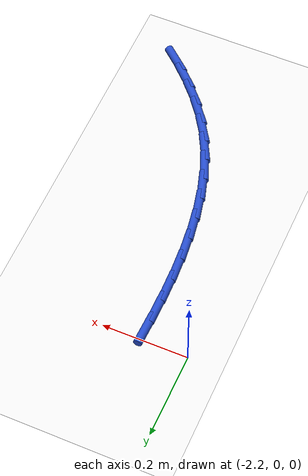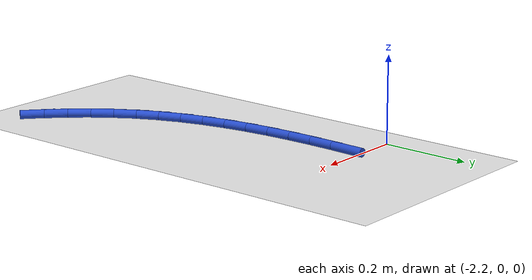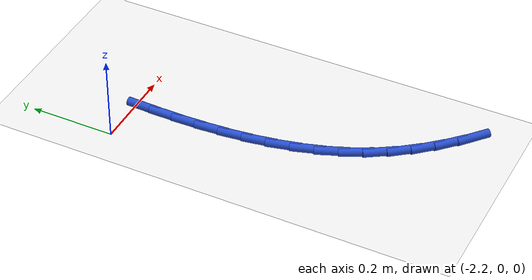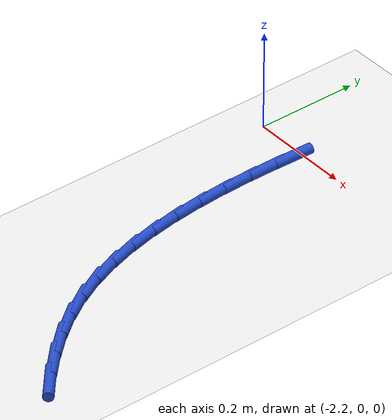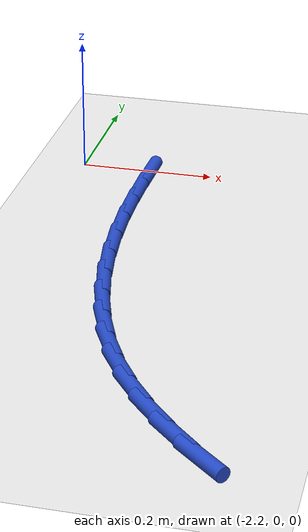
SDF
<sdf version="1.6">
 <world name="default">
  <model name="ground_plane">
   <static>1</static>
   <link name="link">
    <collision name="collision">
     <geometry><plane><normal>0 0 1</normal><size>100 100</size></plane></geometry>
     <surface><friction><ode><mu>100</mu><mu2>50</mu2></ode></friction></surface>
    </collision>
    <visual name="visual">
     <cast_shadows>0</cast_shadows>
     <geometry><plane><normal>0 0 1</normal><size>100 100</size></plane></geometry>
     <material>
      <script><uri>file://media/materials/scripts/gazebo.material</uri><name>Gazebo/WhiteGlow</name></script>
     </material>
    </visual>
   </link>
  </model>
  <model name="line">
   <link name="link_60">
    <pose>-2.0904117387742365 -0.023983169946198188 0.01 0 1.57 1.5412938653510373</pose>
    <collision name="collision">
     <geometry><cylinder><radius>0.01</radius><length>0.08</length></cylinder></geometry>
    </collision>
    <visual name="visual">
     <material>
      <script><name>Gazebo/Blue</name><uri>file://media/materials/scripts/gazebo.material</uri></script>
     </material>
     <geometry><cylinder><radius>0.01</radius><length>0.08</length></cylinder></geometry>
    </visual>
   </link>
   <link name="link_61">
    <pose>-2.0921149657364024 -0.08169810930883031 0.01 0 1.57 1.568789338137607</pose>
    <collision name="collision">
     <geometry><cylinder><radius>0.01</radius><length>0.08</length></cylinder></geometry>
    </collision>
    <visual name="visual">
     <material>
      <script><name>Gazebo/Blue</name><uri>file://media/materials/scripts/gazebo.material</uri></script>
     </material>
     <geometry><cylinder><radius>0.01</radius><length>0.08</length></cylinder></geometry>
    </visual>
   </link>
   <link name="link_62">
    <pose>-2.092231008013145 -0.13951713111297953 0.01 0 1.57 -1.5394688541245236</pose>
    <collision name="collision">
     <geometry><cylinder><radius>0.01</radius><length>0.08</length></cylinder></geometry>
    </collision>
    <visual name="visual">
     <material>
      <script><name>Gazebo/Blue</name><uri>file://media/materials/scripts/gazebo.material</uri></script>
     </material>
     <geometry><cylinder><radius>0.01</radius><length>0.08</length></cylinder></geometry>
    </visual>
   </link>
   <link name="link_63">
    <pose>-2.0904260201125013 -0.19711505492062983 0.01 0 1.57 -1.4997548808653045</pose>
    <collision name="collision">
     <geometry><cylinder><radius>0.01</radius><length>0.08</length></cylinder></geometry>
    </collision>
    <visual name="visual">
     <material>
      <script><name>Gazebo/Blue</name><uri>file://media/materials/scripts/gazebo.material</uri></script>
     </material>
     <geometry><cylinder><radius>0.01</radius><length>0.08</length></cylinder></geometry>
    </visual>
   </link>
   <link name="link_64">
    <pose>-2.0863661565425025 -0.25416670029376287 0.01 0 1.57 -1.4530002685298624</pose>
    <collision name="collision">
     <geometry><cylinder><radius>0.01</radius><length>0.08</length></cylinder></geometry>
    </collision>
    <visual name="visual">
     <material>
      <script><name>Gazebo/Blue</name><uri>file://media/materials/scripts/gazebo.material</uri></script>
     </material>
     <geometry><cylinder><radius>0.01</radius><length>0.08</length></cylinder></geometry>
    </visual>
   </link>
   <link name="link_65">
    <pose>-2.079717571811183 -0.310346886794363 0.01 0 1.57 -1.39845024930249</pose>
    <collision name="collision">
     <geometry><cylinder><radius>0.01</radius><length>0.08</length></cylinder></geometry>
    </collision>
    <visual name="visual">
     <material>
      <script><name>Gazebo/Blue</name><uri>file://media/materials/scripts/gazebo.material</uri></script>
     </material>
     <geometry><cylinder><radius>0.01</radius><length>0.08</length></cylinder></geometry>
    </visual>
   </link>
   <link name="link_66">
    <pose>-2.0701464204265756 -0.36533043398441395 0.01 0 1.57 -1.3353088458332874</pose>
    <collision name="collision">
     <geometry><cylinder><radius>0.01</radius><length>0.08</length></cylinder></geometry>
    </collision>
    <visual name="visual">
     <material>
      <script><name>Gazebo/Blue</name><uri>file://media/materials/scripts/gazebo.material</uri></script>
     </material>
     <geometry><cylinder><radius>0.01</radius><length>0.08</length></cylinder></geometry>
    </visual>
   </link>
   <link name="link_67">
    <pose>-2.057318856896716 -0.4187921614258978 0.01 0 1.57 -1.2628323339829068</pose>
    <collision name="collision">
     <geometry><cylinder><radius>0.01</radius><length>0.08</length></cylinder></geometry>
    </collision>
    <visual name="visual">
     <material>
      <script><name>Gazebo/Blue</name><uri>file://media/materials/scripts/gazebo.material</uri></script>
     </material>
     <geometry><cylinder><radius>0.01</radius><length>0.08</length></cylinder></geometry>
    </visual>
   </link>
   <link name="link_68">
    <pose>-2.0409010357296355 -0.4704068886807982 0.01 0 1.57 -1.1804793517768353</pose>
    <collision name="collision">
     <geometry><cylinder><radius>0.01</radius><length>0.08</length></cylinder></geometry>
    </collision>
    <visual name="visual">
     <material>
      <script><name>Gazebo/Blue</name><uri>file://media/materials/scripts/gazebo.material</uri></script>
     </material>
     <geometry><cylinder><radius>0.01</radius><length>0.08</length></cylinder></geometry>
    </visual>
   </link>
   <link name="link_69">
    <pose>-2.0205591114333683 -0.5198494353110987 0.01 0 1.57 -1.0881948573840976</pose>
    <collision name="collision">
     <geometry><cylinder><radius>0.01</radius><length>0.08</length></cylinder></geometry>
    </collision>
    <visual name="visual">
     <material>
      <script><name>Gazebo/Blue</name><uri>file://media/materials/scripts/gazebo.material</uri></script>
     </material>
     <geometry><cylinder><radius>0.01</radius><length>0.08</length></cylinder></geometry>
    </visual>
   </link>
   <link name="link_70">
    <pose>-1.9959622651131155 -0.5667969793841655 0.01 0 1.57 -0.9926267104071781</pose>
    <collision name="collision">
     <geometry><cylinder><radius>0.01</radius><length>0.08</length></cylinder></geometry>
    </collision>
    <visual name="visual">
     <material>
      <script><name>Gazebo/Blue</name><uri>file://media/materials/scripts/gazebo.material</uri></script>
     </material>
     <geometry><cylinder><radius>0.01</radius><length>0.08</length></cylinder></geometry>
    </visual>
   </link>
   <link name="link_71">
    <pose>-1.9670352250326015 -0.6111258365848894 0.01 0 1.57 -0.9057308309134268</pose>
    <collision name="collision">
     <geometry><cylinder><radius>0.01</radius><length>0.08</length></cylinder></geometry>
    </collision>
    <visual name="visual">
     <material>
      <script><name>Gazebo/Blue</name><uri>file://media/materials/scripts/gazebo.material</uri></script>
     </material>
     <geometry><cylinder><radius>0.01</radius><length>0.08</length></cylinder></geometry>
    </visual>
   </link>
   <link name="link_72">
    <pose>-1.9341484615723754 -0.6530596714933229 0.01 0 1.57 -0.8295283186736384</pose>
    <collision name="collision">
     <geometry><cylinder><radius>0.01</radius><length>0.08</length></cylinder></geometry>
    </collision>
    <visual name="visual">
     <material>
      <script><name>Gazebo/Blue</name><uri>file://media/materials/scripts/gazebo.material</uri></script>
     </material>
     <geometry><cylinder><radius>0.01</radius><length>0.08</length></cylinder></geometry>
    </visual>
   </link>
   <link name="link_73">
    <pose>-1.897717241777038 -0.6928570569272136 0.01 0 1.57 -0.7642229338404924</pose>
    <collision name="collision">
     <geometry><cylinder><radius>0.01</radius><length>0.08</length></cylinder></geometry>
    </collision>
    <visual name="visual">
     <material>
      <script><name>Gazebo/Blue</name><uri>file://media/materials/scripts/gazebo.material</uri></script>
     </material>
     <geometry><cylinder><radius>0.01</radius><length>0.08</length></cylinder></geometry>
    </visual>
   </link>
   <link name="link_74">
    <pose>-1.858156832691189 -0.7307765657043095 0.01 0 1.57 -0.7095128350086486</pose>
    <collision name="collision">
     <geometry><cylinder><radius>0.01</radius><length>0.08</length></cylinder></geometry>
    </collision>
    <visual name="visual">
     <material>
      <script><name>Gazebo/Blue</name><uri>file://media/materials/scripts/gazebo.material</uri></script>
     </material>
     <geometry><cylinder><radius>0.01</radius><length>0.08</length></cylinder></geometry>
    </visual>
   </link>
  </model>
 </world>
</sdf>
